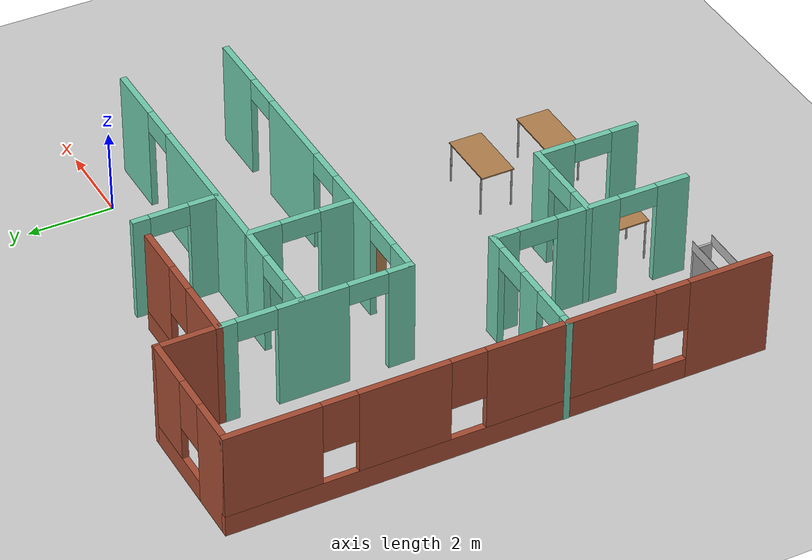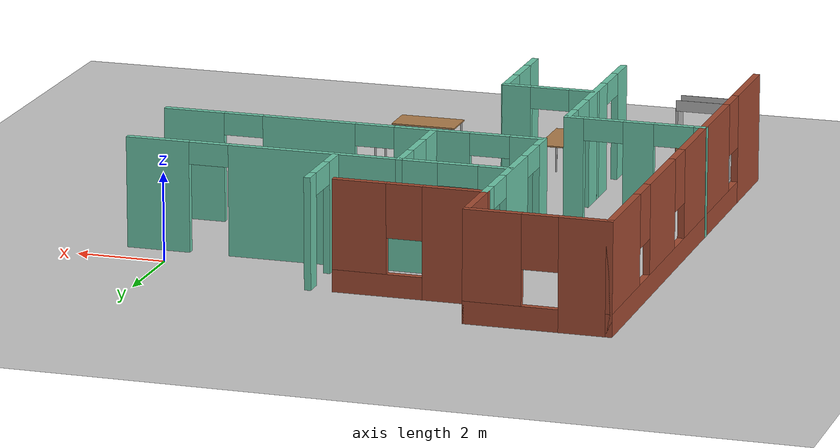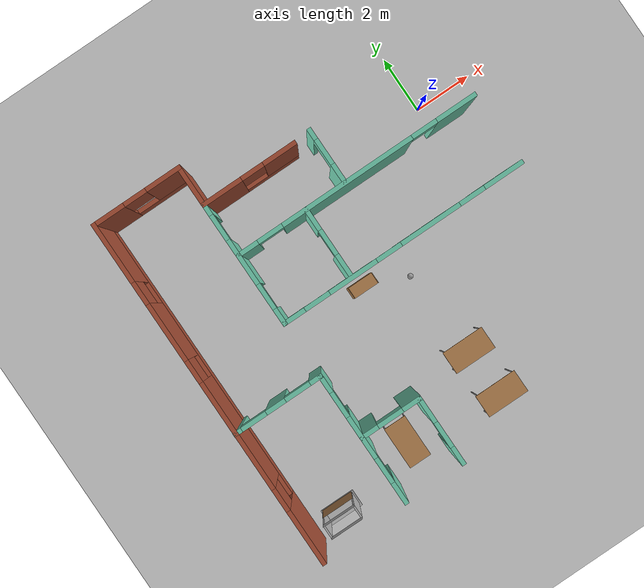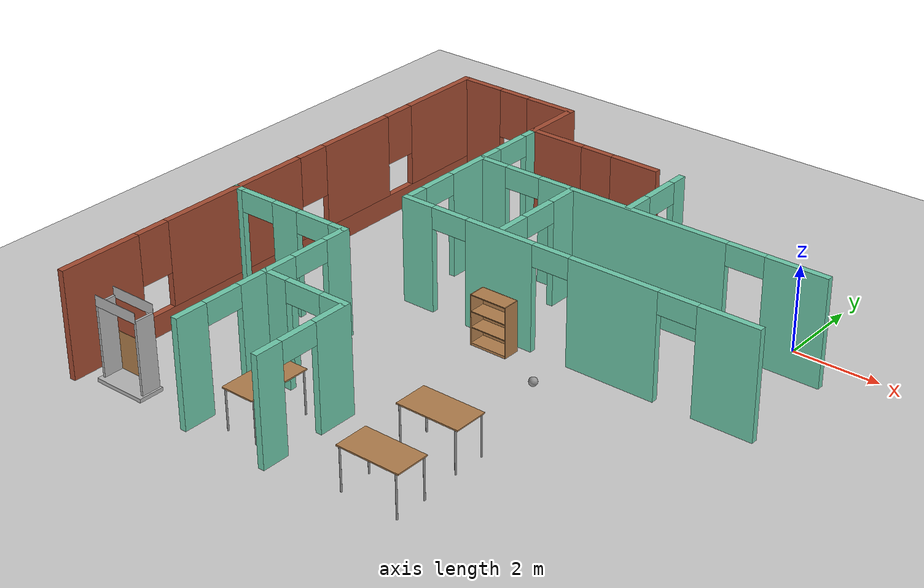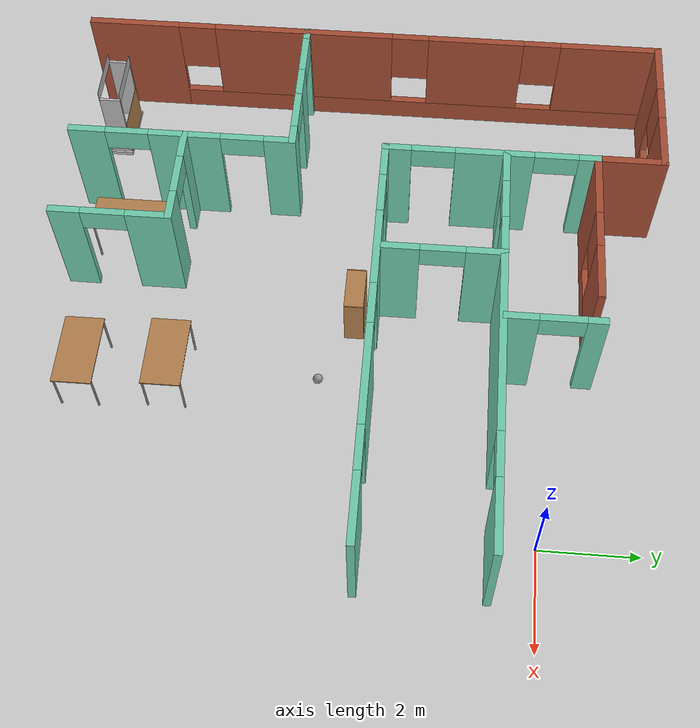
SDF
<sdf version="1.6">
 <world name="default">
  <model name="ground_plane">
   <static>1</static>
   <link name="link">
    <collision name="collision">
     <geometry><plane><normal>0 0 1</normal><size>100 100</size></plane></geometry>
     <surface>
      <contact><collide_bitmask>65535</collide_bitmask></contact>
      <friction><ode><mu>100</mu><mu2>50</mu2></ode></friction>
     </surface>
    </collision>
    <visual name="visual">
     <cast_shadows>0</cast_shadows>
     <geometry><plane><normal>0 0 1</normal><size>100 100</size></plane></geometry>
     <material>
      <script><uri>file://media/materials/scripts/gazebo.material</uri><name>Gazebo/Grey</name></script>
     </material>
    </visual>
   </link>
  </model>
  <model name="my_apartment">
   <pose>-3.10653 -3.79856 0 0 -0 0</pose>
   <link name="Wall_10">
    <pose>-2.79582 4.775 0 0 -0 0</pose>
    <visual name="Wall_10_Visual_0">
     <pose>-1.0014 0 1.25 0 -0 0</pose>
     <geometry><box><size>1.44721 0.15 2.5</size></box></geometry>
     <material>
      <script><uri>file://media/materials/scripts/gazebo.material</uri><name>Gazebo/Bricks</name></script>
      <ambient>0.435294 0.796078 0.67451 1</ambient>
     </material>
     <meta><layer>0</layer></meta>
    </visual>
    <collision name="Wall_10_Collision_0">
     <geometry><box><size>1.44721 0.15 2.5</size></box></geometry>
     <pose>-1.0014 0 1.25 0 -0 0</pose>
    </collision>
    <visual name="Wall_10_Visual_1">
     <pose>0.723602 0 0.25 0 -0 0</pose>
     <geometry><box><size>2.00279 0.15 0.5</size></box></geometry>
     <material>
      <script><uri>file://media/materials/scripts/gazebo.material</uri><name>Gazebo/Bricks</name></script>
      <ambient>0.435294 0.796078 0.67451 1</ambient>
     </material>
     <meta><layer>0</layer></meta>
    </visual>
    <collision name="Wall_10_Collision_1">
     <geometry><box><size>2.00279 0.15 0.5</size></box></geometry>
     <pose>0.723602 0 0.25 0 -0 0</pose>
    </collision>
    <visual name="Wall_10_Visual_2">
     <pose>1.1236 0 1.5 0 -0 0</pose>
     <geometry><box><size>1.2028 0.15 2</size></box></geometry>
     <material>
      <script><uri>file://media/materials/scripts/gazebo.material</uri><name>Gazebo/Bricks</name></script>
      <ambient>0.435294 0.796078 0.67451 1</ambient>
     </material>
     <meta><layer>0</layer></meta>
    </visual>
    <collision name="Wall_10_Collision_2">
     <geometry><box><size>1.2028 0.15 2</size></box></geometry>
     <pose>1.1236 0 1.5 0 -0 0</pose>
    </collision>
    <visual name="Wall_10_Visual_3">
     <pose>0.122205 0 1.9 0 -0 0</pose>
     <geometry><box><size>0.8 0.15 1.2</size></box></geometry>
     <material>
      <script><uri>file://media/materials/scripts/gazebo.material</uri><name>Gazebo/Bricks</name></script>
      <ambient>0.435294 0.796078 0.67451 1</ambient>
     </material>
     <meta><layer>0</layer></meta>
    </visual>
    <collision name="Wall_10_Collision_3">
     <geometry><box><size>0.8 0.15 1.2</size></box></geometry>
     <pose>0.122205 0 1.9 0 -0 0</pose>
    </collision>
   </link>
   <link name="Wall_12">
    <pose>-4.44565 2.59978 0 0 0 -1.57072</pose>
    <visual name="Wall_12_Visual_0">
     <pose>-2.01587 0 1.25 0 -0 0</pose>
     <geometry><box><size>0.468264 0.15 2.5</size></box></geometry>
     <material>
      <script><uri>file://media/materials/scripts/gazebo.material</uri><name>Gazebo/Grey</name></script>
      <ambient>0.435294 0.796078 0.67451 1</ambient>
     </material>
     <meta><layer>0</layer></meta>
    </visual>
    <collision name="Wall_12_Collision_0">
     <geometry><box><size>0.468264 0.15 2.5</size></box></geometry>
     <pose>-2.01587 0 1.25 0 -0 0</pose>
    </collision>
    <visual name="Wall_12_Visual_1">
     <pose>-0.071119 0 1.25 0 -0 0</pose>
     <geometry><box><size>1.62123 0.15 2.5</size></box></geometry>
     <material>
      <script><uri>file://media/materials/scripts/gazebo.material</uri><name>Gazebo/Grey</name></script>
      <ambient>0.435294 0.796078 0.67451 1</ambient>
     </material>
     <meta><layer>0</layer></meta>
    </visual>
    <collision name="Wall_12_Collision_1">
     <geometry><box><size>1.62123 0.15 2.5</size></box></geometry>
     <pose>-0.071119 0 1.25 0 -0 0</pose>
    </collision>
    <visual name="Wall_12_Visual_2">
     <pose>1.94475 0 1.25 0 -0 0</pose>
     <geometry><box><size>0.610503 0.15 2.5</size></box></geometry>
     <material>
      <script><uri>file://media/materials/scripts/gazebo.material</uri><name>Gazebo/Grey</name></script>
      <ambient>0.435294 0.796078 0.67451 1</ambient>
     </material>
     <meta><layer>0</layer></meta>
    </visual>
    <collision name="Wall_12_Collision_2">
     <geometry><box><size>0.610503 0.15 2.5</size></box></geometry>
     <pose>1.94475 0 1.25 0 -0 0</pose>
    </collision>
    <visual name="Wall_12_Visual_3">
     <pose>-1.33174 0 2.25 0 -0 0</pose>
     <geometry><box><size>0.9 0.15 0.5</size></box></geometry>
     <material>
      <script><uri>file://media/materials/scripts/gazebo.material</uri><name>Gazebo/Grey</name></script>
      <ambient>0.435294 0.796078 0.67451 1</ambient>
     </material>
     <meta><layer>0</layer></meta>
    </visual>
    <collision name="Wall_12_Collision_3">
     <geometry><box><size>0.9 0.15 0.5</size></box></geometry>
     <pose>-1.33174 0 2.25 0 -0 0</pose>
    </collision>
    <visual name="Wall_12_Visual_4">
     <pose>1.1895 0 2.25 0 -0 0</pose>
     <geometry><box><size>0.9 0.15 0.5</size></box></geometry>
     <material>
      <script><uri>file://media/materials/scripts/gazebo.material</uri><name>Gazebo/Grey</name></script>
      <ambient>0.435294 0.796078 0.67451 1</ambient>
     </material>
     <meta><layer>0</layer></meta>
    </visual>
    <collision name="Wall_12_Collision_4">
     <geometry><box><size>0.9 0.15 0.5</size></box></geometry>
     <pose>1.1895 0 2.25 0 -0 0</pose>
    </collision>
   </link>
   <link name="Wall_13">
    <pose>-0.120473 0.424565 0 0 -0 0</pose>
    <visual name="Wall_13_Visual_0">
     <pose>-3.99093 0 1.25 0 -0 0</pose>
     <geometry><box><size>0.818142 0.15 2.5</size></box></geometry>
     <material>
      <script><uri>file://media/materials/scripts/gazebo.material</uri><name>Gazebo/Grey</name></script>
      <ambient>0.435294 0.796078 0.67451 1</ambient>
     </material>
     <meta><layer>0</layer></meta>
    </visual>
    <collision name="Wall_13_Collision_0">
     <geometry><box><size>0.818142 0.15 2.5</size></box></geometry>
     <pose>-3.99093 0 1.25 0 -0 0</pose>
    </collision>
    <visual name="Wall_13_Visual_1">
     <pose>-1.8163 0 1.25 0 -0 0</pose>
     <geometry><box><size>1.73111 0.15 2.5</size></box></geometry>
     <material>
      <script><uri>file://media/materials/scripts/gazebo.material</uri><name>Gazebo/Grey</name></script>
      <ambient>0.435294 0.796078 0.67451 1</ambient>
     </material>
     <meta><layer>0</layer></meta>
    </visual>
    <collision name="Wall_13_Collision_1">
     <geometry><box><size>1.73111 0.15 2.5</size></box></geometry>
     <pose>-1.8163 0 1.25 0 -0 0</pose>
    </collision>
    <visual name="Wall_13_Visual_2">
     <pose>1.02013 0 1.25 0 -0 0</pose>
     <geometry><box><size>2.14175 0.15 2.5</size></box></geometry>
     <material>
      <script><uri>file://media/materials/scripts/gazebo.material</uri><name>Gazebo/Grey</name></script>
      <ambient>0.435294 0.796078 0.67451 1</ambient>
     </material>
     <meta><layer>0</layer></meta>
    </visual>
    <collision name="Wall_13_Collision_2">
     <geometry><box><size>2.14175 0.15 2.5</size></box></geometry>
     <pose>1.02013 0 1.25 0 -0 0</pose>
    </collision>
    <visual name="Wall_13_Visual_3">
     <pose>3.6955 0 1.25 0 -0 0</pose>
     <geometry><box><size>1.40899 0.15 2.5</size></box></geometry>
     <material>
      <script><uri>file://media/materials/scripts/gazebo.material</uri><name>Gazebo/Grey</name></script>
      <ambient>0.435294 0.796078 0.67451 1</ambient>
     </material>
     <meta><layer>0</layer></meta>
    </visual>
    <collision name="Wall_13_Collision_3">
     <geometry><box><size>1.40899 0.15 2.5</size></box></geometry>
     <pose>3.6955 0 1.25 0 -0 0</pose>
    </collision>
    <visual name="Wall_13_Visual_4">
     <pose>-3.13186 0 2.25 0 -0 0</pose>
     <geometry><box><size>0.9 0.15 0.5</size></box></geometry>
     <material>
      <script><uri>file://media/materials/scripts/gazebo.material</uri><name>Gazebo/Grey</name></script>
      <ambient>0.435294 0.796078 0.67451 1</ambient>
     </material>
     <meta><layer>0</layer></meta>
    </visual>
    <collision name="Wall_13_Collision_4">
     <geometry><box><size>0.9 0.15 0.5</size></box></geometry>
     <pose>-3.13186 0 2.25 0 -0 0</pose>
    </collision>
    <visual name="Wall_13_Visual_5">
     <pose>-0.500745 0 2.25 0 -0 0</pose>
     <geometry><box><size>0.9 0.15 0.5</size></box></geometry>
     <material>
      <script><uri>file://media/materials/scripts/gazebo.material</uri><name>Gazebo/Grey</name></script>
      <ambient>0.435294 0.796078 0.67451 1</ambient>
     </material>
     <meta><layer>0</layer></meta>
    </visual>
    <collision name="Wall_13_Collision_5">
     <geometry><box><size>0.9 0.15 0.5</size></box></geometry>
     <pose>-0.500745 0 2.25 0 -0 0</pose>
    </collision>
    <visual name="Wall_13_Visual_6">
     <pose>2.54101 0 2.25 0 -0 0</pose>
     <geometry><box><size>0.9 0.15 0.5</size></box></geometry>
     <material>
      <script><uri>file://media/materials/scripts/gazebo.material</uri><name>Gazebo/Grey</name></script>
      <ambient>0.435294 0.796078 0.67451 1</ambient>
     </material>
     <meta><layer>0</layer></meta>
    </visual>
    <collision name="Wall_13_Collision_6">
     <geometry><box><size>0.9 0.15 0.5</size></box></geometry>
     <pose>2.54101 0 2.25 0 -0 0</pose>
    </collision>
   </link>
   <link name="Wall_19">
    <pose>-0.118146 2.91521 0 0 -0 0</pose>
    <visual name="Wall_19_Visual_0">
     <pose>-3.9948 0 1.25 0 -0 0</pose>
     <geometry><box><size>0.760398 0.15 2.5</size></box></geometry>
     <material>
      <script><uri>file://media/materials/scripts/gazebo.material</uri><name>Gazebo/Grey</name></script>
      <ambient>0.435294 0.796078 0.67451 1</ambient>
     </material>
     <meta><layer>0</layer></meta>
    </visual>
    <collision name="Wall_19_Collision_0">
     <geometry><box><size>0.760398 0.15 2.5</size></box></geometry>
     <pose>-3.9948 0 1.25 0 -0 0</pose>
    </collision>
    <visual name="Wall_19_Visual_1">
     <pose>-0.343379 0 1.25 0 -0 0</pose>
     <geometry><box><size>4.74245 0.15 2.5</size></box></geometry>
     <material>
      <script><uri>file://media/materials/scripts/gazebo.material</uri><name>Gazebo/Grey</name></script>
      <ambient>0.435294 0.796078 0.67451 1</ambient>
     </material>
     <meta><layer>0</layer></meta>
    </visual>
    <collision name="Wall_19_Collision_1">
     <geometry><box><size>4.74245 0.15 2.5</size></box></geometry>
     <pose>-0.343379 0 1.25 0 -0 0</pose>
    </collision>
    <visual name="Wall_19_Visual_2">
     <pose>3.65142 0 1.25 0 -0 0</pose>
     <geometry><box><size>1.44716 0.15 2.5</size></box></geometry>
     <material>
      <script><uri>file://media/materials/scripts/gazebo.material</uri><name>Gazebo/Grey</name></script>
      <ambient>0.435294 0.796078 0.67451 1</ambient>
     </material>
     <meta><layer>0</layer></meta>
    </visual>
    <collision name="Wall_19_Collision_2">
     <geometry><box><size>1.44716 0.15 2.5</size></box></geometry>
     <pose>3.65142 0 1.25 0 -0 0</pose>
    </collision>
    <visual name="Wall_19_Visual_3">
     <pose>-3.1646 0 2.25 0 -0 0</pose>
     <geometry><box><size>0.9 0.15 0.5</size></box></geometry>
     <material>
      <script><uri>file://media/materials/scripts/gazebo.material</uri><name>Gazebo/Grey</name></script>
      <ambient>0.435294 0.796078 0.67451 1</ambient>
     </material>
     <meta><layer>0</layer></meta>
    </visual>
    <collision name="Wall_19_Collision_3">
     <geometry><box><size>0.9 0.15 0.5</size></box></geometry>
     <pose>-3.1646 0 2.25 0 -0 0</pose>
    </collision>
    <visual name="Wall_19_Visual_4">
     <pose>2.47784 0 2.25 0 -0 0</pose>
     <geometry><box><size>0.9 0.15 0.5</size></box></geometry>
     <material>
      <script><uri>file://media/materials/scripts/gazebo.material</uri><name>Gazebo/Grey</name></script>
      <ambient>0.435294 0.796078 0.67451 1</ambient>
     </material>
     <meta><layer>0</layer></meta>
    </visual>
    <collision name="Wall_19_Collision_4">
     <geometry><box><size>0.9 0.15 0.5</size></box></geometry>
     <pose>2.47784 0 2.25 0 -0 0</pose>
    </collision>
   </link>
   <link name="Wall_21">
    <pose>-1.97093 1.74021 0 0 0 -1.5708</pose>
    <visual name="Wall_21_Visual_0">
     <pose>-0.835388 0 1.25 0 -0 0</pose>
     <geometry><box><size>0.829225 0.15 2.5</size></box></geometry>
     <material>
      <script><uri>file://media/materials/scripts/gazebo.material</uri><name>Gazebo/Grey</name></script>
      <ambient>0.435294 0.796078 0.67451 1</ambient>
     </material>
     <meta><layer>0</layer></meta>
    </visual>
    <collision name="Wall_21_Collision_0">
     <geometry><box><size>0.829225 0.15 2.5</size></box></geometry>
     <pose>-0.835388 0 1.25 0 -0 0</pose>
    </collision>
    <visual name="Wall_21_Visual_1">
     <pose>0.864612 0 1.25 0 -0 0</pose>
     <geometry><box><size>0.770775 0.15 2.5</size></box></geometry>
     <material>
      <script><uri>file://media/materials/scripts/gazebo.material</uri><name>Gazebo/Grey</name></script>
      <ambient>0.435294 0.796078 0.67451 1</ambient>
     </material>
     <meta><layer>0</layer></meta>
    </visual>
    <collision name="Wall_21_Collision_1">
     <geometry><box><size>0.770775 0.15 2.5</size></box></geometry>
     <pose>0.864612 0 1.25 0 -0 0</pose>
    </collision>
    <visual name="Wall_21_Visual_2">
     <pose>0.029225 0 2.25 0 -0 0</pose>
     <geometry><box><size>0.9 0.15 0.5</size></box></geometry>
     <material>
      <script><uri>file://media/materials/scripts/gazebo.material</uri><name>Gazebo/Grey</name></script>
      <ambient>0.435294 0.796078 0.67451 1</ambient>
     </material>
     <meta><layer>0</layer></meta>
    </visual>
    <collision name="Wall_21_Collision_2">
     <geometry><box><size>0.9 0.15 0.5</size></box></geometry>
     <pose>0.029225 0 2.25 0 -0 0</pose>
    </collision>
   </link>
   <link name="Wall_25">
    <pose>-0.533187 3.90139 0 0 -0 1.5708</pose>
    <visual name="Wall_25_Visual_0">
     <pose>-0.652107 0 1.25 0 -0 0</pose>
     <geometry><box><size>0.695786 0.15 2.5</size></box></geometry>
     <material>
      <script><uri>file://media/materials/scripts/gazebo.material</uri><name>Gazebo/Grey</name></script>
      <ambient>0.435294 0.796078 0.67451 1</ambient>
     </material>
     <meta><layer>0</layer></meta>
    </visual>
    <collision name="Wall_25_Collision_0">
     <geometry><box><size>0.695786 0.15 2.5</size></box></geometry>
     <pose>-0.652107 0 1.25 0 -0 0</pose>
    </collision>
    <visual name="Wall_25_Visual_1">
     <pose>0.797893 0 1.25 0 -0 0</pose>
     <geometry><box><size>0.404214 0.15 2.5</size></box></geometry>
     <material>
      <script><uri>file://media/materials/scripts/gazebo.material</uri><name>Gazebo/Grey</name></script>
      <ambient>0.435294 0.796078 0.67451 1</ambient>
     </material>
     <meta><layer>0</layer></meta>
    </visual>
    <collision name="Wall_25_Collision_1">
     <geometry><box><size>0.404214 0.15 2.5</size></box></geometry>
     <pose>0.797893 0 1.25 0 -0 0</pose>
    </collision>
    <visual name="Wall_25_Visual_2">
     <pose>0.145786 0 2.25 0 -0 0</pose>
     <geometry><box><size>0.9 0.15 0.5</size></box></geometry>
     <material>
      <script><uri>file://media/materials/scripts/gazebo.material</uri><name>Gazebo/Grey</name></script>
      <ambient>0.435294 0.796078 0.67451 1</ambient>
     </material>
     <meta><layer>0</layer></meta>
    </visual>
    <collision name="Wall_25_Collision_2">
     <geometry><box><size>0.9 0.15 0.5</size></box></geometry>
     <pose>0.145786 0 2.25 0 -0 0</pose>
    </collision>
   </link>
   <link name="Wall_41">
    <pose>-6.00418 -1.50417 0 0 -0 0</pose>
    <visual name="Wall_41_Visual_0">
     <pose>-1.47711 0 1.25 0 -0 0</pose>
     <geometry><box><size>0.295788 0.15 2.5</size></box></geometry>
     <material>
      <script><uri>file://media/materials/scripts/gazebo.material</uri><name>Gazebo/Grey</name></script>
      <ambient>0.435294 0.796078 0.67451 1</ambient>
     </material>
     <meta><layer>0</layer></meta>
    </visual>
    <collision name="Wall_41_Collision_0">
     <geometry><box><size>0.295788 0.15 2.5</size></box></geometry>
     <pose>-1.47711 0 1.25 0 -0 0</pose>
    </collision>
    <visual name="Wall_41_Visual_1">
     <pose>-0.081206 0 1.25 0 -0 0</pose>
     <geometry><box><size>0.696012 0.15 2.5</size></box></geometry>
     <material>
      <script><uri>file://media/materials/scripts/gazebo.material</uri><name>Gazebo/Grey</name></script>
      <ambient>0.435294 0.796078 0.67451 1</ambient>
     </material>
     <meta><layer>0</layer></meta>
    </visual>
    <collision name="Wall_41_Collision_1">
     <geometry><box><size>0.696012 0.15 2.5</size></box></geometry>
     <pose>-0.081206 0 1.25 0 -0 0</pose>
    </collision>
    <visual name="Wall_41_Visual_2">
     <pose>1.3959 0 1.25 0 -0 0</pose>
     <geometry><box><size>0.4582 0.15 2.5</size></box></geometry>
     <material>
      <script><uri>file://media/materials/scripts/gazebo.material</uri><name>Gazebo/Grey</name></script>
      <ambient>0.435294 0.796078 0.67451 1</ambient>
     </material>
     <meta><layer>0</layer></meta>
    </visual>
    <collision name="Wall_41_Collision_2">
     <geometry><box><size>0.4582 0.15 2.5</size></box></geometry>
     <pose>1.3959 0 1.25 0 -0 0</pose>
    </collision>
    <visual name="Wall_41_Visual_3">
     <pose>-0.879212 0 2.25 0 -0 0</pose>
     <geometry><box><size>0.9 0.15 0.5</size></box></geometry>
     <material>
      <script><uri>file://media/materials/scripts/gazebo.material</uri><name>Gazebo/Grey</name></script>
      <ambient>0.435294 0.796078 0.67451 1</ambient>
     </material>
     <meta><layer>0</layer></meta>
    </visual>
    <collision name="Wall_41_Collision_3">
     <geometry><box><size>0.9 0.15 0.5</size></box></geometry>
     <pose>-0.879212 0 2.25 0 -0 0</pose>
    </collision>
    <visual name="Wall_41_Visual_4">
     <pose>0.7168 0 2.25 0 -0 0</pose>
     <geometry><box><size>0.9 0.15 0.5</size></box></geometry>
     <material>
      <script><uri>file://media/materials/scripts/gazebo.material</uri><name>Gazebo/Grey</name></script>
      <ambient>0.435294 0.796078 0.67451 1</ambient>
     </material>
     <meta><layer>0</layer></meta>
    </visual>
    <collision name="Wall_41_Collision_4">
     <geometry><box><size>0.9 0.15 0.5</size></box></geometry>
     <pose>0.7168 0 2.25 0 -0 0</pose>
    </collision>
   </link>
   <link name="Wall_42">
    <pose>-4.45418 -3.80417 0 0 0 -1.5708</pose>
    <visual name="Wall_42_Visual_0">
     <pose>-2.04206 0 1.25 0 -0 0</pose>
     <geometry><box><size>0.665877 0.15 2.5</size></box></geometry>
     <material>
      <script><uri>file://media/materials/scripts/gazebo.material</uri><name>Gazebo/Grey</name></script>
      <ambient>0.435294 0.796078 0.67451 1</ambient>
     </material>
     <meta><layer>0</layer></meta>
    </visual>
    <collision name="Wall_42_Collision_0">
     <geometry><box><size>0.665877 0.15 2.5</size></box></geometry>
     <pose>-2.04206 0 1.25 0 -0 0</pose>
    </collision>
    <visual name="Wall_42_Visual_1">
     <pose>-0.056331 0 1.25 0 -0 0</pose>
     <geometry><box><size>1.50558 0.15 2.5</size></box></geometry>
     <material>
      <script><uri>file://media/materials/scripts/gazebo.material</uri><name>Gazebo/Grey</name></script>
      <ambient>0.435294 0.796078 0.67451 1</ambient>
     </material>
     <meta><layer>0</layer></meta>
    </visual>
    <collision name="Wall_42_Collision_1">
     <geometry><box><size>1.50558 0.15 2.5</size></box></geometry>
     <pose>-0.056331 0 1.25 0 -0 0</pose>
    </collision>
    <visual name="Wall_42_Visual_2">
     <pose>1.98573 0 1.25 0 -0 0</pose>
     <geometry><box><size>0.778539 0.15 2.5</size></box></geometry>
     <material>
      <script><uri>file://media/materials/scripts/gazebo.material</uri><name>Gazebo/Grey</name></script>
      <ambient>0.435294 0.796078 0.67451 1</ambient>
     </material>
     <meta><layer>0</layer></meta>
    </visual>
    <collision name="Wall_42_Collision_2">
     <geometry><box><size>0.778539 0.15 2.5</size></box></geometry>
     <pose>1.98573 0 1.25 0 -0 0</pose>
    </collision>
    <visual name="Wall_42_Visual_3">
     <pose>-1.25912 0 2.25 0 -0 0</pose>
     <geometry><box><size>0.9 0.15 0.5</size></box></geometry>
     <material>
      <script><uri>file://media/materials/scripts/gazebo.material</uri><name>Gazebo/Grey</name></script>
      <ambient>0.435294 0.796078 0.67451 1</ambient>
     </material>
     <meta><layer>0</layer></meta>
    </visual>
    <collision name="Wall_42_Collision_3">
     <geometry><box><size>0.9 0.15 0.5</size></box></geometry>
     <pose>-1.25912 0 2.25 0 -0 0</pose>
    </collision>
    <visual name="Wall_42_Visual_4">
     <pose>1.14646 0 2.25 0 -0 0</pose>
     <geometry><box><size>0.9 0.15 0.5</size></box></geometry>
     <material>
      <script><uri>file://media/materials/scripts/gazebo.material</uri><name>Gazebo/Grey</name></script>
      <ambient>0.435294 0.796078 0.67451 1</ambient>
     </material>
     <meta><layer>0</layer></meta>
    </visual>
    <collision name="Wall_42_Collision_4">
     <geometry><box><size>0.9 0.15 0.5</size></box></geometry>
     <pose>1.14646 0 2.25 0 -0 0</pose>
    </collision>
   </link>
   <link name="Wall_44">
    <pose>-3.40468 -3.74784 0 0 -0 0</pose>
    <visual name="Wall_44_Visual_0">
     <pose>-0.792061 0 1.25 0 -0 0</pose>
     <geometry><box><size>0.665877 0.15 2.5</size></box></geometry>
     <material>
      <script><uri>file://media/materials/scripts/gazebo.material</uri><name>Gazebo/Grey</name></script>
      <ambient>0.435294 0.796078 0.67451 1</ambient>
     </material>
     <meta><layer>0</layer></meta>
    </visual>
    <collision name="Wall_44_Collision_0">
     <geometry><box><size>0.665877 0.15 2.5</size></box></geometry>
     <pose>-0.792061 0 1.25 0 -0 0</pose>
    </collision>
    <visual name="Wall_44_Visual_1">
     <pose>0.782939 0 1.25 0 -0 0</pose>
     <geometry><box><size>0.684123 0.15 2.5</size></box></geometry>
     <material>
      <script><uri>file://media/materials/scripts/gazebo.material</uri><name>Gazebo/Grey</name></script>
      <ambient>0.435294 0.796078 0.67451 1</ambient>
     </material>
     <meta><layer>0</layer></meta>
    </visual>
    <collision name="Wall_44_Collision_1">
     <geometry><box><size>0.684123 0.15 2.5</size></box></geometry>
     <pose>0.782939 0 1.25 0 -0 0</pose>
    </collision>
    <visual name="Wall_44_Visual_2">
     <pose>-0.009123 0 2.25 0 -0 0</pose>
     <geometry><box><size>0.9 0.15 0.5</size></box></geometry>
     <material>
      <script><uri>file://media/materials/scripts/gazebo.material</uri><name>Gazebo/Grey</name></script>
      <ambient>0.435294 0.796078 0.67451 1</ambient>
     </material>
     <meta><layer>0</layer></meta>
    </visual>
    <collision name="Wall_44_Collision_2">
     <geometry><box><size>0.9 0.15 0.5</size></box></geometry>
     <pose>-0.009123 0 2.25 0 -0 0</pose>
    </collision>
   </link>
   <link name="Wall_45">
    <pose>-2.35468 -4.92284 0 0 0 -1.5708</pose>
    <visual name="Wall_45_Visual_0">
     <pose>-0.778277 0 1.25 0 -0 0</pose>
     <geometry><box><size>0.943445 0.15 2.5</size></box></geometry>
     <material>
      <script><uri>file://media/materials/scripts/gazebo.material</uri><name>Gazebo/Grey</name></script>
      <ambient>0.435294 0.796078 0.67451 1</ambient>
     </material>
     <meta><layer>0</layer></meta>
    </visual>
    <collision name="Wall_45_Collision_0">
     <geometry><box><size>0.943445 0.15 2.5</size></box></geometry>
     <pose>-0.778277 0 1.25 0 -0 0</pose>
    </collision>
    <visual name="Wall_45_Visual_1">
     <pose>0.921723 0 1.25 0 -0 0</pose>
     <geometry><box><size>0.656555 0.15 2.5</size></box></geometry>
     <material>
      <script><uri>file://media/materials/scripts/gazebo.material</uri><name>Gazebo/Grey</name></script>
      <ambient>0.435294 0.796078 0.67451 1</ambient>
     </material>
     <meta><layer>0</layer></meta>
    </visual>
    <collision name="Wall_45_Collision_1">
     <geometry><box><size>0.656555 0.15 2.5</size></box></geometry>
     <pose>0.921723 0 1.25 0 -0 0</pose>
    </collision>
    <visual name="Wall_45_Visual_2">
     <pose>0.143445 0 2.25 0 -0 0</pose>
     <geometry><box><size>0.9 0.15 0.5</size></box></geometry>
     <material>
      <script><uri>file://media/materials/scripts/gazebo.material</uri><name>Gazebo/Grey</name></script>
      <ambient>0.435294 0.796078 0.67451 1</ambient>
     </material>
     <meta><layer>0</layer></meta>
    </visual>
    <collision name="Wall_45_Collision_2">
     <geometry><box><size>0.9 0.15 0.5</size></box></geometry>
     <pose>0.143445 0 2.25 0 -0 0</pose>
    </collision>
   </link>
   <link name="Wall_7">
    <pose>-7.54582 -0.05 0 0 -0 1.5708</pose>
    <visual name="Wall_7_Visual_0">
     <pose>-5.26644 0 1.25 0 -0 0</pose>
     <geometry><box><size>1.96711 0.15 2.5</size></box></geometry>
     <material>
      <script><uri>file://media/materials/scripts/gazebo.material</uri><name>Gazebo/Bricks</name></script>
      <ambient>0.435294 0.796078 0.67451 1</ambient>
     </material>
     <meta><layer>0</layer></meta>
    </visual>
    <collision name="Wall_7_Collision_0">
     <geometry><box><size>1.96711 0.15 2.5</size></box></geometry>
     <pose>-5.26644 0 1.25 0 -0 0</pose>
    </collision>
    <visual name="Wall_7_Visual_1">
     <pose>0.983556 0 0.25 0 -0 0</pose>
     <geometry><box><size>10.5329 0.15 0.5</size></box></geometry>
     <material>
      <script><uri>file://media/materials/scripts/gazebo.material</uri><name>Gazebo/Bricks</name></script>
      <ambient>0.435294 0.796078 0.67451 1</ambient>
     </material>
     <meta><layer>0</layer></meta>
    </visual>
    <collision name="Wall_7_Collision_1">
     <geometry><box><size>10.5329 0.15 0.5</size></box></geometry>
     <pose>0.983556 0 0.25 0 -0 0</pose>
    </collision>
    <visual name="Wall_7_Visual_2">
     <pose>-1.53513 0 1.5 0 -0 0</pose>
     <geometry><box><size>3.89551 0.15 2</size></box></geometry>
     <material>
      <script><uri>file://media/materials/scripts/gazebo.material</uri><name>Gazebo/Bricks</name></script>
      <ambient>0.435294 0.796078 0.67451 1</ambient>
     </material>
     <meta><layer>0</layer></meta>
    </visual>
    <collision name="Wall_7_Collision_2">
     <geometry><box><size>3.89551 0.15 2</size></box></geometry>
     <pose>-1.53513 0 1.5 0 -0 0</pose>
    </collision>
    <visual name="Wall_7_Visual_3">
     <pose>2.24672 0 1.5 0 -0 0</pose>
     <geometry><box><size>2.06819 0.15 2</size></box></geometry>
     <material>
      <script><uri>file://media/materials/scripts/gazebo.material</uri><name>Gazebo/Bricks</name></script>
      <ambient>0.435294 0.796078 0.67451 1</ambient>
     </material>
     <meta><layer>0</layer></meta>
    </visual>
    <collision name="Wall_7_Collision_3">
     <geometry><box><size>2.06819 0.15 2</size></box></geometry>
     <pose>2.24672 0 1.5 0 -0 0</pose>
    </collision>
    <visual name="Wall_7_Visual_4">
     <pose>5.16541 0 1.5 0 -0 0</pose>
     <geometry><box><size>2.16918 0.15 2</size></box></geometry>
     <material>
      <script><uri>file://media/materials/scripts/gazebo.material</uri><name>Gazebo/Bricks</name></script>
      <ambient>0.435294 0.796078 0.67451 1</ambient>
     </material>
     <meta><layer>0</layer></meta>
    </visual>
    <collision name="Wall_7_Collision_4">
     <geometry><box><size>2.16918 0.15 2</size></box></geometry>
     <pose>5.16541 0 1.5 0 -0 0</pose>
    </collision>
    <visual name="Wall_7_Visual_5">
     <pose>-3.88289 0 1.9 0 -0 0</pose>
     <geometry><box><size>0.8 0.15 1.2</size></box></geometry>
     <material>
      <script><uri>file://media/materials/scripts/gazebo.material</uri><name>Gazebo/Bricks</name></script>
      <ambient>0.435294 0.796078 0.67451 1</ambient>
     </material>
     <meta><layer>0</layer></meta>
    </visual>
    <collision name="Wall_7_Collision_5">
     <geometry><box><size>0.8 0.15 1.2</size></box></geometry>
     <pose>-3.88289 0 1.9 0 -0 0</pose>
    </collision>
    <visual name="Wall_7_Visual_6">
     <pose>0.812626 0 1.9 0 -0 0</pose>
     <geometry><box><size>0.8 0.15 1.2</size></box></geometry>
     <material>
      <script><uri>file://media/materials/scripts/gazebo.material</uri><name>Gazebo/Bricks</name></script>
      <ambient>0.435294 0.796078 0.67451 1</ambient>
     </material>
     <meta><layer>0</layer></meta>
    </visual>
    <collision name="Wall_7_Collision_6">
     <geometry><box><size>0.8 0.15 1.2</size></box></geometry>
     <pose>0.812626 0 1.9 0 -0 0</pose>
    </collision>
    <visual name="Wall_7_Visual_7">
     <pose>3.68082 0 1.9 0 -0 0</pose>
     <geometry><box><size>0.8 0.15 1.2</size></box></geometry>
     <material>
      <script><uri>file://media/materials/scripts/gazebo.material</uri><name>Gazebo/Bricks</name></script>
      <ambient>0.435294 0.796078 0.67451 1</ambient>
     </material>
     <meta><layer>0</layer></meta>
    </visual>
    <collision name="Wall_7_Collision_7">
     <geometry><box><size>0.8 0.15 1.2</size></box></geometry>
     <pose>3.68082 0 1.9 0 -0 0</pose>
    </collision>
   </link>
   <link name="Wall_8">
    <pose>-5.99582 6.125 0 0 -0 0</pose>
    <visual name="Wall_8_Visual_0">
     <pose>-1.03993 0 1.25 0 -0 0</pose>
     <geometry><box><size>1.17014 0.15 2.5</size></box></geometry>
     <material>
      <script><uri>file://media/materials/scripts/gazebo.material</uri><name>Gazebo/Bricks</name></script>
      <ambient>0.435294 0.796078 0.67451 1</ambient>
     </material>
     <meta><layer>0</layer></meta>
    </visual>
    <collision name="Wall_8_Collision_0">
     <geometry><box><size>1.17014 0.15 2.5</size></box></geometry>
     <pose>-1.03993 0 1.25 0 -0 0</pose>
    </collision>
    <visual name="Wall_8_Visual_1">
     <pose>0.585068 0 0.25 0 -0 0</pose>
     <geometry><box><size>2.07986 0.15 0.5</size></box></geometry>
     <material>
      <script><uri>file://media/materials/scripts/gazebo.material</uri><name>Gazebo/Bricks</name></script>
      <ambient>0.435294 0.796078 0.67451 1</ambient>
     </material>
     <meta><layer>0</layer></meta>
    </visual>
    <collision name="Wall_8_Collision_1">
     <geometry><box><size>2.07986 0.15 0.5</size></box></geometry>
     <pose>0.585068 0 0.25 0 -0 0</pose>
    </collision>
    <visual name="Wall_8_Visual_2">
     <pose>0.985068 0 1.5 0 -0 0</pose>
     <geometry><box><size>1.27986 0.15 2</size></box></geometry>
     <material>
      <script><uri>file://media/materials/scripts/gazebo.material</uri><name>Gazebo/Bricks</name></script>
      <ambient>0.435294 0.796078 0.67451 1</ambient>
     </material>
     <meta><layer>0</layer></meta>
    </visual>
    <collision name="Wall_8_Collision_2">
     <geometry><box><size>1.27986 0.15 2</size></box></geometry>
     <pose>0.985068 0 1.5 0 -0 0</pose>
    </collision>
    <visual name="Wall_8_Visual_3">
     <pose>-0.054864 0 1.9 0 -0 0</pose>
     <geometry><box><size>0.8 0.15 1.2</size></box></geometry>
     <material>
      <script><uri>file://media/materials/scripts/gazebo.material</uri><name>Gazebo/Bricks</name></script>
      <ambient>0.435294 0.796078 0.67451 1</ambient>
     </material>
     <meta><layer>0</layer></meta>
    </visual>
    <collision name="Wall_8_Collision_3">
     <geometry><box><size>0.8 0.15 1.2</size></box></geometry>
     <pose>-0.054864 0 1.9 0 -0 0</pose>
    </collision>
   </link>
   <link name="Wall_9">
    <collision name="Wall_9_Collision">
     <geometry><box><size>1.5 0.15 2.5</size></box></geometry>
     <pose>0 0 1.25 0 -0 0</pose>
    </collision>
    <visual name="Wall_9_Visual">
     <pose>0 0 1.25 0 -0 0</pose>
     <geometry><box><size>1.5 0.15 2.5</size></box></geometry>
     <material>
      <script><uri>file://media/materials/scripts/gazebo.material</uri><name>Gazebo/Bricks</name></script>
      <ambient>1 1 1 1</ambient>
     </material>
     <meta><layer>0</layer></meta>
    </visual>
    <pose>-4.44582 5.45 0 0 0 -1.5708</pose>
   </link>
   <static>1</static>
  </model>
  <model name="bookshelf_0">
   <static>1</static>
   <link name="link">
    <inertial><mass>1</mass></inertial>
    <collision name="back">
     <pose>0 0.005 0.6 0 -0 0</pose>
     <geometry><box><size>0.9 0.01 1.2</size></box></geometry>
    </collision>
    <visual name="visual1">
     <pose>0 0.005 0.6 0 -0 0</pose>
     <geometry><box><size>0.9 0.01 1.2</size></box></geometry>
     <material>
      <script><uri>file://media/materials/scripts/gazebo.material</uri><name>Gazebo/Wood</name></script>
     </material>
    </visual>
    <collision name="left_side">
     <pose>0.45 -0.195 0.6 0 -0 0</pose>
     <geometry><box><size>0.02 0.4 1.2</size></box></geometry>
    </collision>
    <visual name="visual2">
     <pose>0.45 -0.195 0.6 0 -0 0</pose>
     <geometry><box><size>0.02 0.4 1.2</size></box></geometry>
     <material>
      <script><uri>file://media/materials/scripts/gazebo.material</uri><name>Gazebo/Wood</name></script>
     </material>
    </visual>
    <collision name="right_side">
     <pose>-0.45 -0.195 0.6 0 -0 0</pose>
     <geometry><box><size>0.02 0.4 1.2</size></box></geometry>
    </collision>
    <visual name="visual3">
     <pose>-0.45 -0.195 0.6 0 -0 0</pose>
     <geometry><box><size>0.02 0.4 1.2</size></box></geometry>
     <material>
      <script><uri>file://media/materials/scripts/gazebo.material</uri><name>Gazebo/Wood</name></script>
     </material>
    </visual>
    <collision name="bottom">
     <pose>0 -0.195 0.03 0 -0 0</pose>
     <geometry><box><size>0.88 0.4 0.06</size></box></geometry>
    </collision>
    <visual name="visual4">
     <pose>0 -0.195 0.03 0 -0 0</pose>
     <geometry><box><size>0.88 0.4 0.06</size></box></geometry>
     <material>
      <script><uri>file://media/materials/scripts/gazebo.material</uri><name>Gazebo/Wood</name></script>
     </material>
    </visual>
    <collision name="top">
     <pose>0 -0.195 1.19 0 -0 0</pose>
     <geometry><box><size>0.88 0.4 0.02</size></box></geometry>
    </collision>
    <visual name="visual5">
     <pose>0 -0.195 1.19 0 -0 0</pose>
     <geometry><box><size>0.88 0.4 0.02</size></box></geometry>
     <material>
      <script><uri>file://media/materials/scripts/gazebo.material</uri><name>Gazebo/Wood</name></script>
     </material>
    </visual>
    <collision name="low_shelf">
     <pose>0 -0.195 0.43 0 -0 0</pose>
     <geometry><box><size>0.88 0.4 0.02</size></box></geometry>
    </collision>
    <visual name="visual6">
     <pose>0 -0.195 0.43 0 -0 0</pose>
     <geometry><box><size>0.88 0.4 0.02</size></box></geometry>
     <material>
      <script><uri>file://media/materials/scripts/gazebo.material</uri><name>Gazebo/Wood</name></script>
     </material>
    </visual>
    <collision name="high_shelf">
     <pose>0 -0.195 0.8 0 -0 0</pose>
     <geometry><box><size>0.88 0.4 0.02</size></box></geometry>
    </collision>
    <visual name="visual7">
     <pose>0 -0.195 0.8 0 -0 0</pose>
     <geometry><box><size>0.88 0.4 0.02</size></box></geometry>
     <material>
      <script><uri>file://media/materials/scripts/gazebo.material</uri><name>Gazebo/Wood</name></script>
     </material>
    </visual>
   </link>
   <pose>-4.86967 -3.59553 0 0 -0 0</pose>
  </model>
  <model name="table_0">
   <static>1</static>
   <link name="link">
    <collision name="surface">
     <pose>0 0 1 0 -0 0</pose>
     <geometry><box><size>1.5 0.8 0.03</size></box></geometry>
     <surface><friction><ode><mu>0.6</mu><mu2>0.6</mu2></ode></friction></surface>
    </collision>
    <visual name="visual1">
     <pose>0 0 1 0 -0 0</pose>
     <geometry><box><size>1.5 0.8 0.03</size></box></geometry>
     <material>
      <script><uri>file://media/materials/scripts/gazebo.material</uri><name>Gazebo/Wood</name></script>
     </material>
    </visual>
    <collision name="front_left_leg">
     <pose>0.68 0.38 0.5 0 -0 0</pose>
     <geometry><cylinder><radius>0.02</radius><length>1</length></cylinder></geometry>
    </collision>
    <visual name="front_left_leg">
     <pose>0.68 0.38 0.5 0 -0 0</pose>
     <geometry><cylinder><radius>0.02</radius><length>1</length></cylinder></geometry>
     <material>
      <script><uri>file://media/materials/scripts/gazebo.material</uri><name>Gazebo/Grey</name></script>
     </material>
    </visual>
    <collision name="front_right_leg">
     <pose>0.68 -0.38 0.5 0 -0 0</pose>
     <geometry><cylinder><radius>0.02</radius><length>1</length></cylinder></geometry>
    </collision>
    <visual name="front_right_leg">
     <pose>0.68 -0.38 0.5 0 -0 0</pose>
     <geometry><cylinder><radius>0.02</radius><length>1</length></cylinder></geometry>
     <material>
      <script><uri>file://media/materials/scripts/gazebo.material</uri><name>Gazebo/Grey</name></script>
     </material>
    </visual>
    <collision name="back_right_leg">
     <pose>-0.68 -0.38 0.5 0 -0 0</pose>
     <geometry><cylinder><radius>0.02</radius><length>1</length></cylinder></geometry>
    </collision>
    <visual name="back_right_leg">
     <pose>-0.68 -0.38 0.5 0 -0 0</pose>
     <geometry><cylinder><radius>0.02</radius><length>1</length></cylinder></geometry>
     <material>
      <script><uri>file://media/materials/scripts/gazebo.material</uri><name>Gazebo/Grey</name></script>
     </material>
    </visual>
    <collision name="back_left_leg">
     <pose>-0.68 0.38 0.5 0 -0 0</pose>
     <geometry><cylinder><radius>0.02</radius><length>1</length></cylinder></geometry>
    </collision>
    <visual name="back_left_leg">
     <pose>-0.68 0.38 0.5 0 -0 0</pose>
     <geometry><cylinder><radius>0.02</radius><length>1</length></cylinder></geometry>
     <material>
      <script><uri>file://media/materials/scripts/gazebo.material</uri><name>Gazebo/Grey</name></script>
     </material>
    </visual>
   </link>
   <pose>-3.13366 -9.17054 0 0 -0 0</pose>
  </model>
  <model name="table_1">
   <static>1</static>
   <link name="link">
    <collision name="surface">
     <pose>0 0 1 0 -0 0</pose>
     <geometry><box><size>1.5 0.8 0.03</size></box></geometry>
     <surface><friction><ode><mu>0.6</mu><mu2>0.6</mu2></ode></friction></surface>
    </collision>
    <visual name="visual1">
     <pose>0 0 1 0 -0 0</pose>
     <geometry><box><size>1.5 0.8 0.03</size></box></geometry>
     <material>
      <script><uri>file://media/materials/scripts/gazebo.material</uri><name>Gazebo/Wood</name></script>
     </material>
    </visual>
    <collision name="front_left_leg">
     <pose>0.68 0.38 0.5 0 -0 0</pose>
     <geometry><cylinder><radius>0.02</radius><length>1</length></cylinder></geometry>
    </collision>
    <visual name="front_left_leg">
     <pose>0.68 0.38 0.5 0 -0 0</pose>
     <geometry><cylinder><radius>0.02</radius><length>1</length></cylinder></geometry>
     <material>
      <script><uri>file://media/materials/scripts/gazebo.material</uri><name>Gazebo/Grey</name></script>
     </material>
    </visual>
    <collision name="front_right_leg">
     <pose>0.68 -0.38 0.5 0 -0 0</pose>
     <geometry><cylinder><radius>0.02</radius><length>1</length></cylinder></geometry>
    </collision>
    <visual name="front_right_leg">
     <pose>0.68 -0.38 0.5 0 -0 0</pose>
     <geometry><cylinder><radius>0.02</radius><length>1</length></cylinder></geometry>
     <material>
      <script><uri>file://media/materials/scripts/gazebo.material</uri><name>Gazebo/Grey</name></script>
     </material>
    </visual>
    <collision name="back_right_leg">
     <pose>-0.68 -0.38 0.5 0 -0 0</pose>
     <geometry><cylinder><radius>0.02</radius><length>1</length></cylinder></geometry>
    </collision>
    <visual name="back_right_leg">
     <pose>-0.68 -0.38 0.5 0 -0 0</pose>
     <geometry><cylinder><radius>0.02</radius><length>1</length></cylinder></geometry>
     <material>
      <script><uri>file://media/materials/scripts/gazebo.material</uri><name>Gazebo/Grey</name></script>
     </material>
    </visual>
    <collision name="back_left_leg">
     <pose>-0.68 0.38 0.5 0 -0 0</pose>
     <geometry><cylinder><radius>0.02</radius><length>1</length></cylinder></geometry>
    </collision>
    <visual name="back_left_leg">
     <pose>-0.68 0.38 0.5 0 -0 0</pose>
     <geometry><cylinder><radius>0.02</radius><length>1</length></cylinder></geometry>
     <material>
      <script><uri>file://media/materials/scripts/gazebo.material</uri><name>Gazebo/Grey</name></script>
     </material>
    </visual>
   </link>
   <pose>-3.2196 -7.42941 0 0 -0 0</pose>
  </model>
  <model name="frc2016_drawbridge">
   <link name="base">
    <inertial>
     <mass>10</mass>
     <pose>0 0 1 0 -0 0</pose>
     <inertia><ixx>3.64907</ixx><ixy>0</ixy><ixz>0</ixz><iyy>4.67075</iyy><iyz>0</iyz><izz>1.66649</izz></inertia>
    </inertial>
    <visual name="platform">
     <pose>0 0 0.0425 0 -0 0</pose>
     <geometry><box><size>1.27 0.5969 0.085</size></box></geometry>
    </visual>
    <collision name="platform">
     <pose>0 0 0.0425 0 -0 0</pose>
     <geometry><box><size>1.27 0.5969 0.085</size></box></geometry>
    </collision>
    <visual name="right_wall">
     <pose>0.55879 0.04444 0.889 0 -0 0</pose>
     <geometry><box><size>0.05715 0.45698 1.77165</size></box></geometry>
    </visual>
    <collision name="right_wall">
     <pose>0.55879 0.04444 0.889 0 -0 0</pose>
     <geometry><box><size>0.05715 0.45698 1.77165</size></box></geometry>
    </collision>
    <visual name="left_wall">
     <pose>-0.55879 0.04444 0.889 0 -0 0</pose>
     <geometry><box><size>0.05715 0.45698 1.77165</size></box></geometry>
    </visual>
    <collision name="left_wall">
     <pose>-0.55879 0.04444 0.889 0 -0 0</pose>
     <geometry><box><size>0.05715 0.45698 1.77165</size></box></geometry>
    </collision>
    <visual name="front_upper_wall">
     <pose>0 0.27611 1.84286 0 -0 0</pose>
     <geometry><box><size>1.1557 0.006347 0.254</size></box></geometry>
    </visual>
    <collision name="front_upper_wall">
     <pose>0 0.27611 1.84286 0 -0 0</pose>
     <geometry><box><size>1.1557 0.006347 0.254</size></box></geometry>
    </collision>
    <visual name="back_upper_wall">
     <pose>0 -0.18722 1.84286 0 -0 0</pose>
     <geometry><box><size>1.1557 0.006347 0.254</size></box></geometry>
    </visual>
    <collision name="back_upper_wall">
     <pose>0 -0.18722 1.84286 0 -0 0</pose>
     <geometry><box><size>1.1557 0.006347 0.254</size></box></geometry>
    </collision>
   </link>
   <link name="bridge">
    <pose>0 0.28245 0.50577 0 -0 0</pose>
    <inertial>
     <mass>2</mass>
     <pose>0 -0.28245 -0.50577 0 -0 0</pose>
     <inertia>
      <ixx>0.139361</ixx>
      <ixy>0</ixy>
      <ixz>0</ixz>
      <iyy>0.357088</iyy>
      <iyz>0</iyz>
      <izz>0.217741</izz>
     </inertia>
    </inertial>
    <visual name="visual">
     <geometry><box><size>1.14298 0.006347 0.9144</size></box></geometry>
     <material><script><name>Gazebo/WoodFloor</name><uri>__default__</uri></script></material>
    </visual>
    <collision name="collision"><geometry><box><size>1.14298 0.006347 0.9144</size></box></geometry></collision>
   </link>
   <joint name="bridge_joint" type="revolute">
    <pose>0 0 -0.4172 0 -0 0</pose>
    <parent>base</parent>
    <child>bridge</child>
    <axis>
     <xyz>1 0 0</xyz>
     <limit><lower>-2</lower><upper>0</upper></limit>
     <use_parent_model_frame>0</use_parent_model_frame>
     <dynamics><spring_reference>0</spring_reference><spring_stiffness>0</spring_stiffness></dynamics>
    </axis>
   </joint>
   <pose>-9.56744 -9.53581 1e-06 0 -1e-06 -0.005075</pose>
  </model>
  <model name="table_6">
   <static>1</static>
   <link name="link">
    <collision name="surface">
     <pose>0 0 1 0 -0 0</pose>
     <geometry><box><size>1.5 0.8 0.03</size></box></geometry>
     <surface><friction><ode><mu>0.6</mu><mu2>0.6</mu2></ode></friction></surface>
    </collision>
    <visual name="visual1">
     <pose>0 0 1 0 -0 0</pose>
     <geometry><box><size>1.5 0.8 0.03</size></box></geometry>
     <material>
      <script><uri>file://media/materials/scripts/gazebo.material</uri><name>Gazebo/Wood</name></script>
     </material>
    </visual>
    <collision name="front_left_leg">
     <pose>0.68 0.38 0.5 0 -0 0</pose>
     <geometry><cylinder><radius>0.02</radius><length>1</length></cylinder></geometry>
    </collision>
    <visual name="front_left_leg">
     <pose>0.68 0.38 0.5 0 -0 0</pose>
     <geometry><cylinder><radius>0.02</radius><length>1</length></cylinder></geometry>
     <material>
      <script><uri>file://media/materials/scripts/gazebo.material</uri><name>Gazebo/Grey</name></script>
     </material>
    </visual>
    <collision name="front_right_leg">
     <pose>0.68 -0.38 0.5 0 -0 0</pose>
     <geometry><cylinder><radius>0.02</radius><length>1</length></cylinder></geometry>
    </collision>
    <visual name="front_right_leg">
     <pose>0.68 -0.38 0.5 0 -0 0</pose>
     <geometry><cylinder><radius>0.02</radius><length>1</length></cylinder></geometry>
     <material>
      <script><uri>file://media/materials/scripts/gazebo.material</uri><name>Gazebo/Grey</name></script>
     </material>
    </visual>
    <collision name="back_right_leg">
     <pose>-0.68 -0.38 0.5 0 -0 0</pose>
     <geometry><cylinder><radius>0.02</radius><length>1</length></cylinder></geometry>
    </collision>
    <visual name="back_right_leg">
     <pose>-0.68 -0.38 0.5 0 -0 0</pose>
     <geometry><cylinder><radius>0.02</radius><length>1</length></cylinder></geometry>
     <material>
      <script><uri>file://media/materials/scripts/gazebo.material</uri><name>Gazebo/Grey</name></script>
     </material>
    </visual>
    <collision name="back_left_leg">
     <pose>-0.68 0.38 0.5 0 -0 0</pose>
     <geometry><cylinder><radius>0.02</radius><length>1</length></cylinder></geometry>
    </collision>
    <visual name="back_left_leg">
     <pose>-0.68 0.38 0.5 0 -0 0</pose>
     <geometry><cylinder><radius>0.02</radius><length>1</length></cylinder></geometry>
     <material>
      <script><uri>file://media/materials/scripts/gazebo.material</uri><name>Gazebo/Grey</name></script>
     </material>
    </visual>
   </link>
   <pose>-6.50889 -8.7458 0 0 0 -1.57287</pose>
  </model>
  <model name="my_ball_clone">
   <link name="link_0">
    <inertial>
     <mass>1</mass>
     <inertia><ixx>0.1</ixx><ixy>0</ixy><ixz>0</ixz><iyy>0.1</iyy><iyz>0</iyz><izz>0.1</izz></inertia>
    </inertial>
    <visual name="visual">
     <geometry><sphere><radius>0.1</radius></sphere></geometry>
     <material>
      <lighting>1</lighting>
      <script><uri>file://media/materials/scripts/gazebo.material</uri><name>Gazebo/Grey</name></script>
      <shader type="pixel"><normal_map>__default__</normal_map></shader>
      <ambient>1 1 1 1</ambient>
      <diffuse>1 1 1 1</diffuse>
      <specular>1 1 1 1</specular>
      <emissive>1 1 1 1</emissive>
     </material>
    </visual>
    <collision name="collision">
     <geometry><sphere><radius>0.1</radius></sphere></geometry>
     <surface>
      <friction>
       <ode><mu>1</mu><mu2>1</mu2><fdir1>0 0 0</fdir1><slip1>0</slip1><slip2>0</slip2></ode>
       <torsional>
        <coefficient>1</coefficient>
        <patch_radius>0</patch_radius>
        <surface_radius>0</surface_radius>
        <use_patch_radius>1</use_patch_radius>
        <ode><slip>0</slip></ode>
       </torsional>
      </friction>
      <bounce><restitution_coefficient>0</restitution_coefficient><threshold>1e+06</threshold></bounce>
      <contact>
       <collide_without_contact>0</collide_without_contact>
       <collide_without_contact_bitmask>1</collide_without_contact_bitmask>
       <collide_bitmask>1</collide_bitmask>
       <ode>
        <soft_cfm>0</soft_cfm>
        <soft_erp>0.2</soft_erp>
        <kp>1e+13</kp>
        <kd>1</kd>
        <max_vel>0.01</max_vel>
        <min_depth>0</min_depth>
       </ode>
       <bullet>
        <split_impulse>1</split_impulse>
        <split_impulse_penetration_threshold>-0.01</split_impulse_penetration_threshold>
        <soft_cfm>0</soft_cfm>
        <soft_erp>0.2</soft_erp>
        <kp>1e+13</kp>
        <kd>1</kd>
       </bullet>
      </contact>
     </surface>
    </collision>
   </link>
   <static>0</static>
   <pose>-3.33525 -4.43968 0.1 0 -0 0</pose>
  </model>
 </world>
</sdf>
